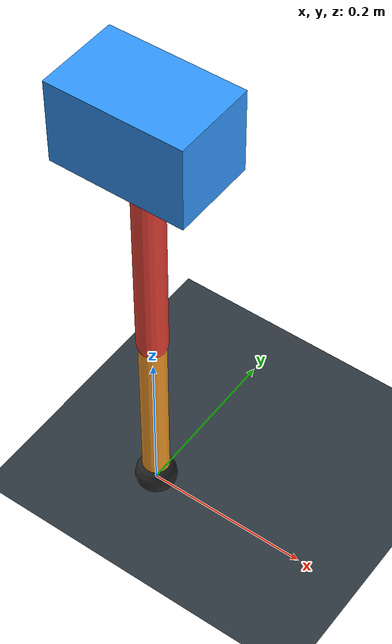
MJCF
<mujoco model="single_axis_two_bar">
  <compiler angle="radian" inertiafromgeom="true"/>
  <option timestep="0.001" integrator="implicitfast" gravity="0 0 -9.81"/>
  <default>
    <joint damping="0.08"/>
    <geom friction="1.2 0.01 0.0001" condim="3"/>
  </default>
  <worldbody>
    <geom name="floor" type="plane" size="5 5 0.1" rgba="0.18 0.22 0.25 1"/>
    <body name="carriage" pos="0 0 0.5525763702057758">
      <joint name="pole_slide" type="slide" axis="0 0 1"/>
      <geom name="payload" type="box" size="0.08 0.05 0.05" mass="2.773261441691656" rgba="0.2 0.6 1 1"/>
      <body name="thigh" pos="0 0 0">
        <joint name="hip" type="hinge" axis="0 1 0"/>
        <geom name="thigh_link" type="capsule" fromto="0 0 0 0 0 -0.3112968663526062" size="0.018" mass="0.22180313070140004" rgba="0.9 0.25 0.2 1"/>
        <body name="shank" pos="0 0 -0.3112968663526062">
          <joint name="knee" type="hinge" axis="0 1 0"/>
          <geom name="shank_link" type="capsule" fromto="0 0 0 0 0 -0.23259629880798743" size="0.016" mass="0.1657279363896109" rgba="0.95 0.6 0.15 1"/>
          <geom name="foot" type="sphere" pos="0 0 -0.23259629880798743" size="0.025" mass="0.03" rgba="0.15 0.15 0.15 1"/>
          <site name="toe" pos="0 0 -0.23259629880798743" size="0.008"/>
        </body>
      </body>
    </body>
  </worldbody>
  <actuator>
    <motor name="hip_motor" joint="hip" ctrlrange="-31.32897366461471 31.32897366461471"/>
    <motor name="knee_motor" joint="knee" ctrlrange="-43.48720474594696 43.48720474594696"/>
  </actuator>
</mujoco>
